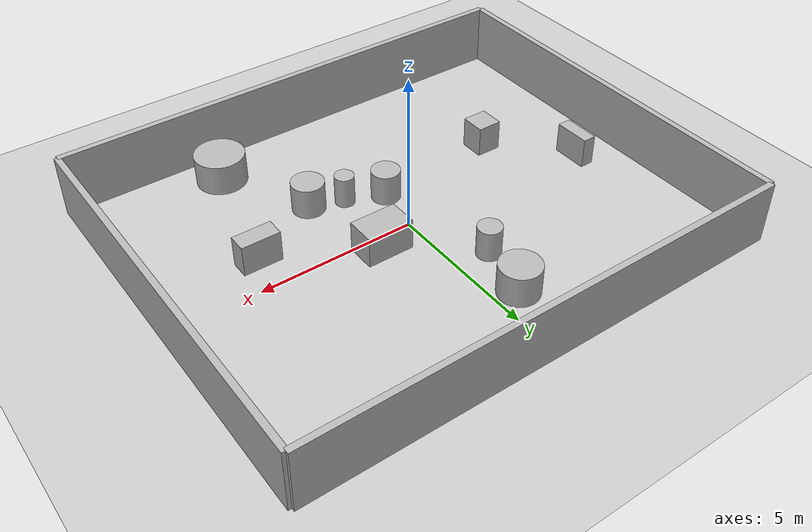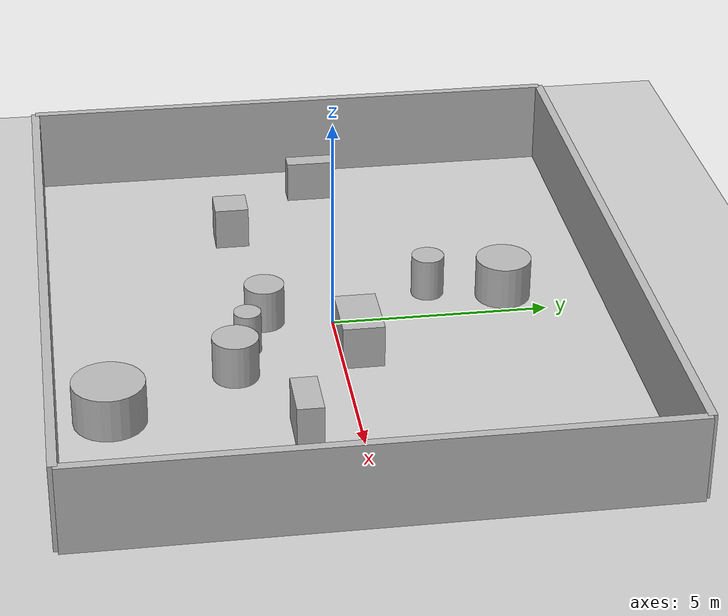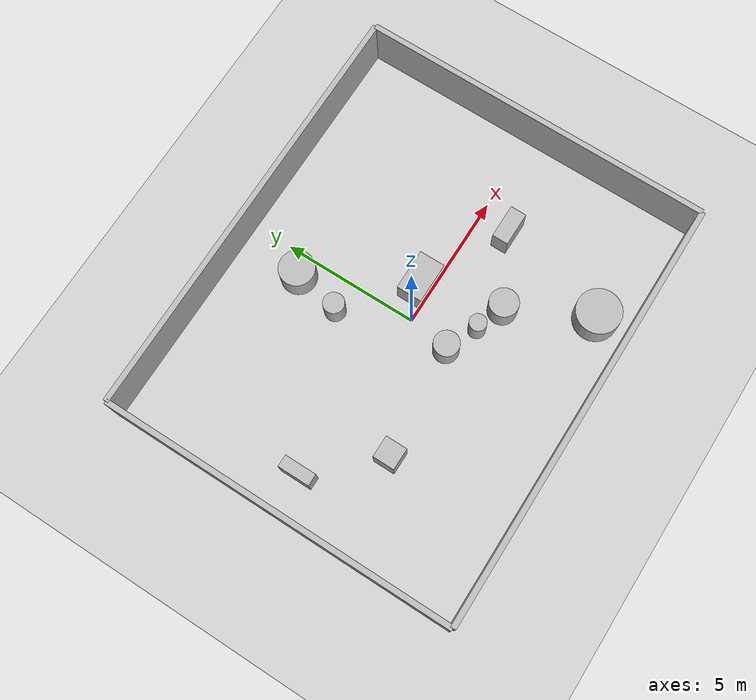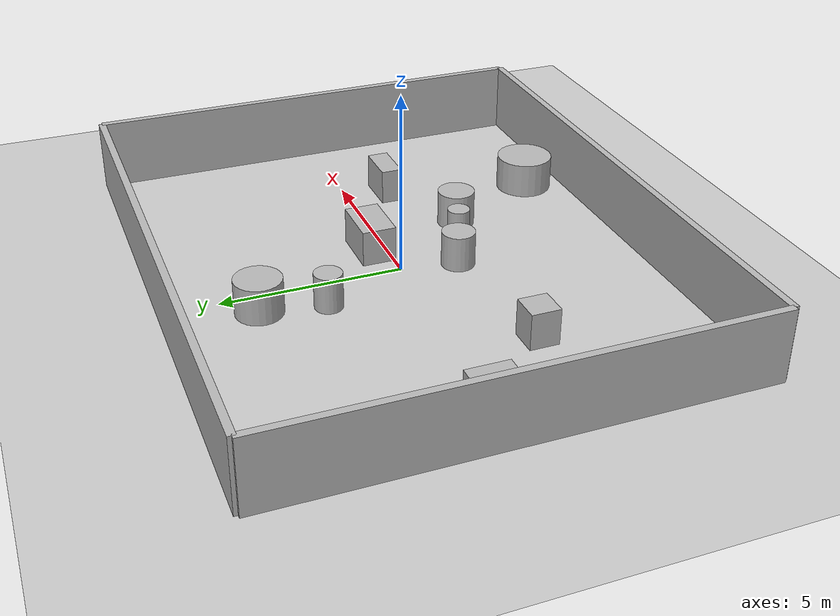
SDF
<?xml version="1.0"?>
<sdf version="1.6">
  <world name="env_23">

    <include><uri>model://ground_plane</uri></include>
    <include><uri>model://sun</uri></include>

    <!-- WALLS -->
    <model name="wall_north"><static>true</static><pose>0 6.486611071860296 1 0 0 0</pose>
      <link name="link"><collision name="collision">
        <geometry><box><size>15.790970232579355 0.2 2</size></box></geometry>
      </collision><visual name="visual">
        <geometry><box><size>15.790970232579355 0.2 2</size></box></geometry>
      </visual></link>
    </model>

    <model name="wall_south"><static>true</static><pose>0 -6.486611071860296 1 0 0 0</pose>
      <link name="link"><collision name="collision">
        <geometry><box><size>15.790970232579355 0.2 2</size></box></geometry>
      </collision><visual name="visual">
        <geometry><box><size>15.790970232579355 0.2 2</size></box></geometry>
      </visual></link>
    </model>

    <model name="wall_east"><static>true</static><pose>7.895485116289677 0 1 0 0 1.57</pose>
      <link name="link"><collision name="collision">
        <geometry><box><size>12.973222143720593 0.2 2</size></box></geometry>
      </collision><visual name="visual">
        <geometry><box><size>12.973222143720593 0.2 2</size></box></geometry>
      </visual></link>
    </model>

    <model name="wall_west"><static>true</static><pose>-7.895485116289677 0 1 0 0 1.57</pose>
      <link name="link"><collision name="collision">
        <geometry><box><size>12.973222143720593 0.2 2</size></box></geometry>
      </collision><visual name="visual">
        <geometry><box><size>12.973222143720593 0.2 2</size></box></geometry>
      </visual></link>
    </model>

    <!-- SENSOR -->

    <model name="lidar_sensor">
      <static>true</static>
      <pose>-4.077238326135408 -1.2184673720372574 0.4 0 0 0</pose>
      <link name="link">
        <sensor name="lidar" type="ray">
          <pose>0 0 0 0 0 0</pose>
          <visualize>true</visualize>
          <always_on>true</always_on>
          <update_rate>10</update_rate>
          <ray>
            <scan><horizontal>
              <samples>90</samples>
              <resolution>1</resolution>
              <min_angle>-3.14159</min_angle>
              <max_angle>3.14159</max_angle>
            </horizontal></scan>
            <range><min>0.15</min><max>20.0</max><resolution>0.01</resolution></range>
          </ray>
          <plugin name="lidar_plugin" filename="liblidar_plugin.so"/>
        </sensor>
      </link>
    </model>

    <!-- OBSTACLES -->

    <model name="obstacle_0">
      <static>true</static>
      <pose>3.4083201205730287 -5.258598217426223 0.5 0 0 0</pose>
      <link name="link">
        <collision name="collision">
          <geometry><cylinder><radius>0.8</radius><length>1.0</length></cylinder></geometry>
        </collision>
        <visual name="visual">
          <geometry><cylinder><radius>0.8</radius><length>1.0</length></cylinder></geometry>
        </visual>
      </link>
    </model>

    <model name="obstacle_1">
      <static>true</static>
      <pose>-6.39881309799027 0.2965129640491124 0.5 0 0 0</pose>
      <link name="link">
        <collision name="collision">
          <geometry><box><size>0.44 1.18 1.0</size></box></geometry>
        </collision>
        <visual name="visual">
          <geometry><box><size>0.44 1.18 1.0</size></box></geometry>
        </visual>
      </link>
    </model>

    <model name="obstacle_2">
      <static>true</static>
      <pose>0.9119823856572502 -2.0466416972423915 0.5 0 0 0</pose>
      <link name="link">
        <collision name="collision">
          <geometry><cylinder><radius>0.31</radius><length>1.0</length></cylinder></geometry>
        </collision>
        <visual name="visual">
          <geometry><cylinder><radius>0.31</radius><length>1.0</length></cylinder></geometry>
        </visual>
      </link>
    </model>

    <model name="obstacle_3">
      <static>true</static>
      <pose>-4.325006517020746 -1.9198694000149485 0.5 0 0 0</pose>
      <link name="link">
        <collision name="collision">
          <geometry><box><size>0.8 0.8 1.0</size></box></geometry>
        </collision>
        <visual name="visual">
          <geometry><box><size>0.8 0.8 1.0</size></box></geometry>
        </visual>
      </link>
    </model>

    <model name="obstacle_4">
      <static>true</static>
      <pose>-0.25852317572762296 -1.5439717395737151 0.5 0 0 0</pose>
      <link name="link">
        <collision name="collision">
          <geometry><cylinder><radius>0.46</radius><length>1.0</length></cylinder></geometry>
        </collision>
        <visual name="visual">
          <geometry><cylinder><radius>0.46</radius><length>1.0</length></cylinder></geometry>
        </visual>
      </link>
    </model>

    <model name="obstacle_5">
      <static>true</static>
      <pose>4.417819910418865 -1.1531788926009563 0.5 0 0 0</pose>
      <link name="link">
        <collision name="collision">
          <geometry><box><size>1.24 0.59 1.0</size></box></geometry>
        </collision>
        <visual name="visual">
          <geometry><box><size>1.24 0.59 1.0</size></box></geometry>
        </visual>
      </link>
    </model>

    <model name="obstacle_6">
      <static>true</static>
      <pose>1.2553588367954163 0.4234277629800287 0.5 0 0 0</pose>
      <link name="link">
        <collision name="collision">
          <geometry><box><size>1.49 0.94 1.0</size></box></geometry>
        </collision>
        <visual name="visual">
          <geometry><box><size>1.49 0.94 1.0</size></box></geometry>
        </visual>
      </link>
    </model>

    <model name="obstacle_7">
      <static>true</static>
      <pose>-0.7389541986557129 4.1128785750223225 0.5 0 0 0</pose>
      <link name="link">
        <collision name="collision">
          <geometry><cylinder><radius>0.64</radius><length>1.0</length></cylinder></geometry>
        </collision>
        <visual name="visual">
          <geometry><cylinder><radius>0.64</radius><length>1.0</length></cylinder></geometry>
        </visual>
      </link>
    </model>

    <model name="obstacle_8">
      <static>true</static>
      <pose>-1.0966297527193127 2.386544099297491 0.5 0 0 0</pose>
      <link name="link">
        <collision name="collision">
          <geometry><cylinder><radius>0.38</radius><length>1.0</length></cylinder></geometry>
        </collision>
        <visual name="visual">
          <geometry><cylinder><radius>0.38</radius><length>1.0</length></cylinder></geometry>
        </visual>
      </link>
    </model>

    <model name="obstacle_9">
      <static>true</static>
      <pose>1.9688837261857728 -2.421478943457886 0.5 0 0 0</pose>
      <link name="link">
        <collision name="collision">
          <geometry><cylinder><radius>0.52</radius><length>1.0</length></cylinder></geometry>
        </collision>
        <visual name="visual">
          <geometry><cylinder><radius>0.52</radius><length>1.0</length></cylinder></geometry>
        </visual>
      </link>
    </model>

  </world>
</sdf>
